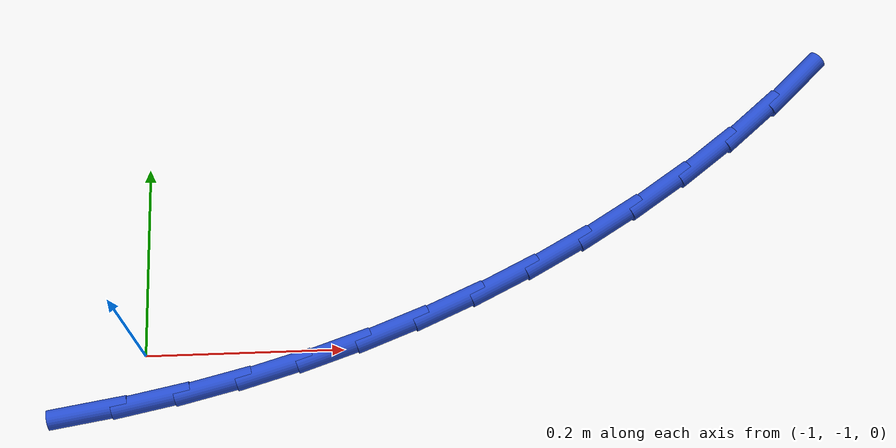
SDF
<sdf version="1.6">
 <world name="default">
  <model name="ground_plane">
   <static>1</static>
   <link name="link">
    <collision name="collision">
     <geometry><plane><normal>0 0 1</normal><size>100 100</size></plane></geometry>
     <surface><friction><ode><mu>100</mu><mu2>50</mu2></ode></friction></surface>
    </collision>
    <visual name="visual">
     <cast_shadows>0</cast_shadows>
     <geometry><plane><normal>0 0 1</normal><size>100 100</size></plane></geometry>
     <material>
      <script><uri>file://media/materials/scripts/gazebo.material</uri><name>Gazebo/WhiteGlow</name></script>
     </material>
    </visual>
   </link>
  </model>
  <model name="line">
   <link name="link_84">
    <pose>-1.0540068404376741 -1.0584302057602235 0.01 0 1.57 0.16310677465876916</pose>
    <collision name="collision">
     <geometry><cylinder><radius>0.01</radius><length>0.08</length></cylinder></geometry>
    </collision>
    <visual name="visual">
     <material>
      <script><name>Gazebo/Blue</name><uri>file://media/materials/scripts/gazebo.material</uri></script>
     </material>
     <geometry><cylinder><radius>0.01</radius><length>0.08</length></cylinder></geometry>
    </visual>
   </link>
   <link name="link_85">
    <pose>-0.9917021254334228 -1.0481767963545978 0.01 0 1.57 0.2027597110469228</pose>
    <collision name="collision">
     <geometry><cylinder><radius>0.01</radius><length>0.08</length></cylinder></geometry>
    </collision>
    <visual name="visual">
     <material>
      <script><name>Gazebo/Blue</name><uri>file://media/materials/scripts/gazebo.material</uri></script>
     </material>
     <geometry><cylinder><radius>0.01</radius><length>0.08</length></cylinder></geometry>
    </visual>
   </link>
   <link name="link_86">
    <pose>-0.9302194223717095 -1.0355368894593284 0.01 0 1.57 0.2435606419156321</pose>
    <collision name="collision">
     <geometry><cylinder><radius>0.01</radius><length>0.08</length></cylinder></geometry>
    </collision>
    <visual name="visual">
     <material>
      <script><name>Gazebo/Blue</name><uri>file://media/materials/scripts/gazebo.material</uri></script>
     </material>
     <geometry><cylinder><radius>0.01</radius><length>0.08</length></cylinder></geometry>
    </visual>
   </link>
   <link name="link_87">
    <pose>-0.8695868594394307 -1.020470068315788 0.01 0 1.57 0.2854253517009932</pose>
    <collision name="collision">
     <geometry><cylinder><radius>0.01</radius><length>0.08</length></cylinder></geometry>
    </collision>
    <visual name="visual">
     <material>
      <script><name>Gazebo/Blue</name><uri>file://media/materials/scripts/gazebo.material</uri></script>
     </material>
     <geometry><cylinder><radius>0.01</radius><length>0.08</length></cylinder></geometry>
    </visual>
   </link>
   <link name="link_88">
    <pose>-0.8098325648234872 -1.0029359161653493 0.01 0 1.57 0.32825043881042243</pose>
    <collision name="collision">
     <geometry><cylinder><radius>0.01</radius><length>0.08</length></cylinder></geometry>
    </collision>
    <visual name="visual">
     <material>
      <script><name>Gazebo/Blue</name><uri>file://media/materials/scripts/gazebo.material</uri></script>
     </material>
     <geometry><cylinder><radius>0.01</radius><length>0.08</length></cylinder></geometry>
    </visual>
   </link>
   <link name="link_89">
    <pose>-0.7509846667107757 -0.9828940162493844 0.01 0 1.57 0.37191375675476707</pose>
    <collision name="collision">
     <geometry><cylinder><radius>0.01</radius><length>0.08</length></cylinder></geometry>
    </collision>
    <visual name="visual">
     <material>
      <script><name>Gazebo/Blue</name><uri>file://media/materials/scripts/gazebo.material</uri></script>
     </material>
     <geometry><cylinder><radius>0.01</radius><length>0.08</length></cylinder></geometry>
    </visual>
   </link>
   <link name="link_90">
    <pose>-0.6930712932881964 -0.9603039518092668 0.01 0 1.57 0.4162756494177807</pose>
    <collision name="collision">
     <geometry><cylinder><radius>0.01</radius><length>0.08</length></cylinder></geometry>
    </collision>
    <visual name="visual">
     <material>
      <script><name>Gazebo/Blue</name><uri>file://media/materials/scripts/gazebo.material</uri></script>
     </material>
     <geometry><cylinder><radius>0.01</radius><length>0.08</length></cylinder></geometry>
    </visual>
   </link>
   <link name="link_91">
    <pose>-0.6361205727426468 -0.9351253060863689 0.01 0 1.57 0.46118110332415807</pose>
    <collision name="collision">
     <geometry><cylinder><radius>0.01</radius><length>0.08</length></cylinder></geometry>
    </collision>
    <visual name="visual">
     <material>
      <script><name>Gazebo/Blue</name><uri>file://media/materials/scripts/gazebo.material</uri></script>
     </material>
     <geometry><cylinder><radius>0.01</radius><length>0.08</length></cylinder></geometry>
    </visual>
   </link>
   <link name="link_92">
    <pose>-0.5801606546611706 -0.9073176667008871 0.01 0 1.57 0.5067213109969185</pose>
    <collision name="collision">
     <geometry><cylinder><radius>0.01</radius><length>0.08</length></cylinder></geometry>
    </collision>
    <visual name="visual">
     <material>
      <script><name>Gazebo/Blue</name><uri>file://media/materials/scripts/gazebo.material</uri></script>
     </material>
     <geometry><cylinder><radius>0.01</radius><length>0.08</length></cylinder></geometry>
    </visual>
   </link>
   <link name="link_93">
    <pose>-0.5252727630372074 -0.8768514811746034 0.01 0 1.57 0.5537587110992879</pose>
    <collision name="collision">
     <geometry><cylinder><radius>0.01</radius><length>0.08</length></cylinder></geometry>
    </collision>
    <visual name="visual">
     <material>
      <script><name>Gazebo/Blue</name><uri>file://media/materials/scripts/gazebo.material</uri></script>
     </material>
     <geometry><cylinder><radius>0.01</radius><length>0.08</length></cylinder></geometry>
    </visual>
   </link>
   <link name="link_94">
    <pose>-0.47170550540742406 -0.843731446471356 0.01 0 1.57 0.6027634317051124</pose>
    <collision name="collision">
     <geometry><cylinder><radius>0.01</radius><length>0.08</length></cylinder></geometry>
    </collision>
    <visual name="visual">
     <material>
      <script><name>Gazebo/Blue</name><uri>file://media/materials/scripts/gazebo.material</uri></script>
     </material>
     <geometry><cylinder><radius>0.01</radius><length>0.08</length></cylinder></geometry>
    </visual>
   </link>
   <link name="link_95">
    <pose>-0.4197404048183966 -0.8079689946128473 0.01 0 1.57 0.6540535640622408</pose>
    <collision name="collision">
     <geometry><cylinder><radius>0.01</radius><length>0.08</length></cylinder></geometry>
    </collision>
    <visual name="visual">
     <material>
      <script><name>Gazebo/Blue</name><uri>file://media/materials/scripts/gazebo.material</uri></script>
     </material>
     <geometry><cylinder><radius>0.01</radius><length>0.08</length></cylinder></geometry>
    </visual>
   </link>
   <link name="link_96">
    <pose>-0.3696589843167038 -0.769575557620782 0.01 0 1.57 0.7079274253869798</pose>
    <collision name="collision">
     <geometry><cylinder><radius>0.01</radius><length>0.08</length></cylinder></geometry>
    </collision>
    <visual name="visual">
     <material>
      <script><name>Gazebo/Blue</name><uri>file://media/materials/scripts/gazebo.material</uri></script>
     </material>
     <geometry><cylinder><radius>0.01</radius><length>0.08</length></cylinder></geometry>
    </visual>
   </link>
   <link name="link_97">
    <pose>-0.3217427669489224 -0.7285625675168625 0.01 0 1.57 0.7646539456796662</pose>
    <collision name="collision">
     <geometry><cylinder><radius>0.01</radius><length>0.08</length></cylinder></geometry>
    </collision>
    <visual name="visual">
     <material>
      <script><name>Gazebo/Blue</name><uri>file://media/materials/scripts/gazebo.material</uri></script>
     </material>
     <geometry><cylinder><radius>0.01</radius><length>0.08</length></cylinder></geometry>
    </visual>
   </link>
  </model>
 </world>
</sdf>
